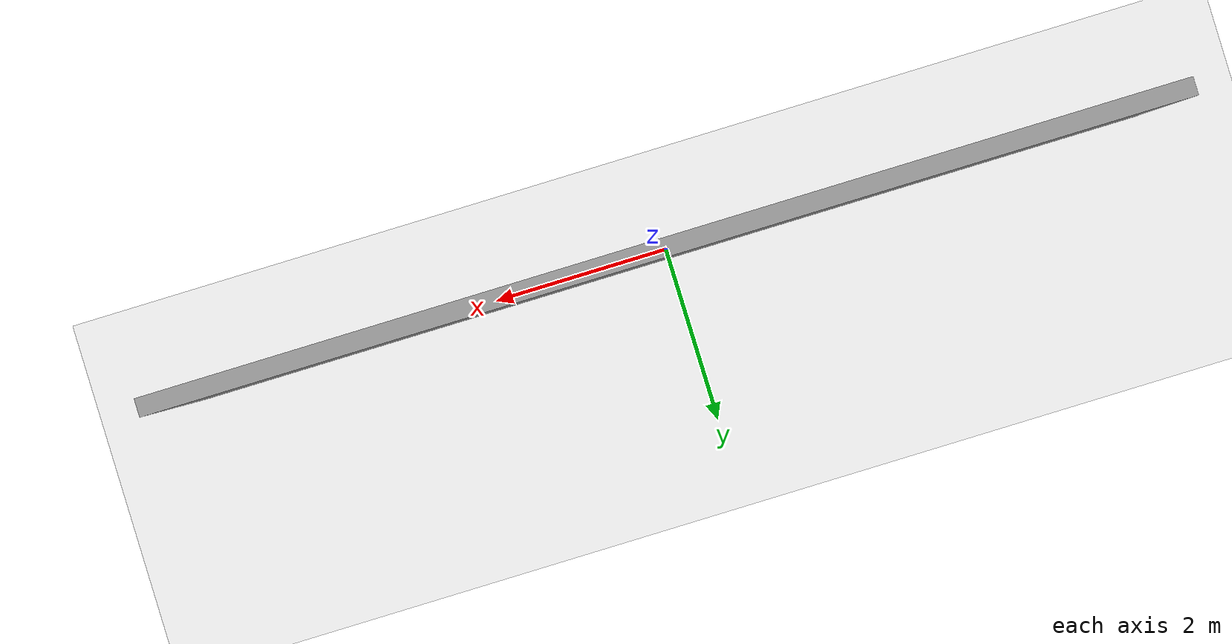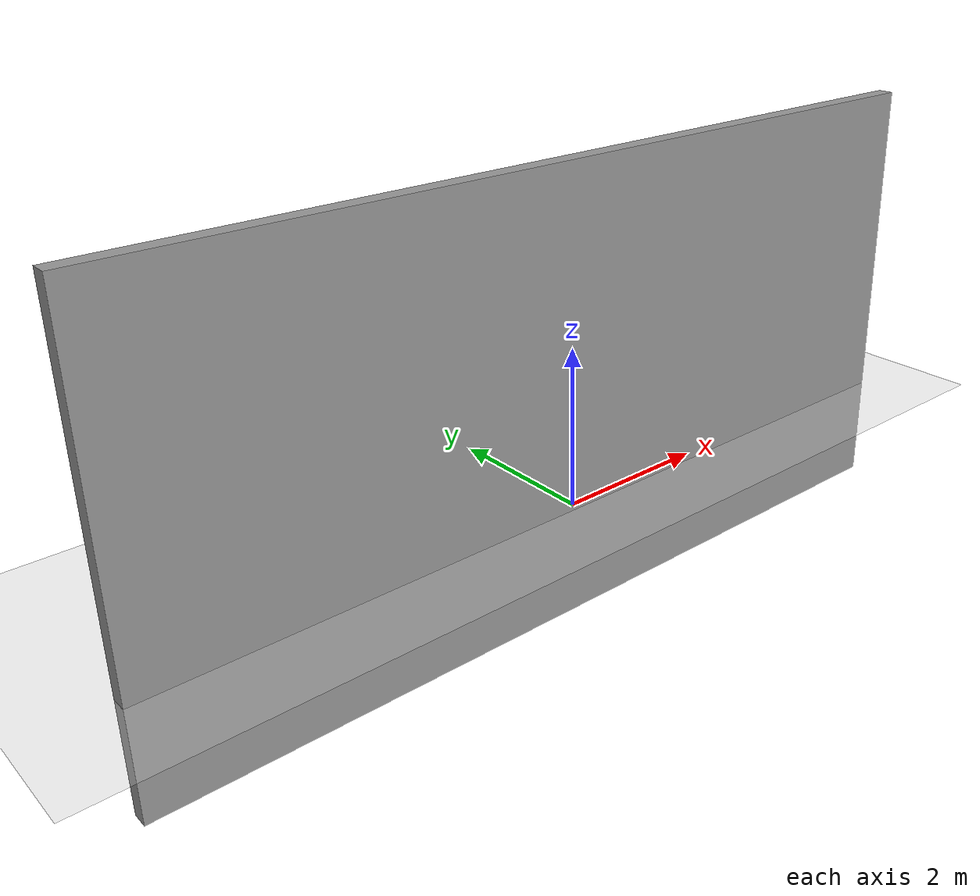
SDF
<sdf version="1.6">
 <world name="default">
  <model name="ground_plane">
   <static>1</static>
   <link name="link">
    <collision name="collision">
     <geometry><plane><normal>0 0 1</normal><size>1000 1000</size></plane></geometry>
     <surface><friction><ode><mu>100</mu><mu2>50</mu2></ode></friction></surface>
    </collision>
    <visual name="visual">
     <cast_shadows>0</cast_shadows>
     <geometry><plane><normal>0 0 1</normal><size>1000 1000</size></plane></geometry>
     <material>
      <script><uri>file://media/materials/scripts/gazebo.material</uri><name>Gazebo/Grey</name></script>
     </material>
    </visual>
   </link>
  </model>
  <gravity>0 0 -9.8</gravity>
  <magnetic_field>6e-06 2.3e-05 -4.2e-05</magnetic_field>
  <atmosphere type="adiabatic"/>
  <physics name="default_physics" default="0" type="ode">
   <real_time_factor>1</real_time_factor>
   <real_time_update_rate>0</real_time_update_rate>
  </physics>
  <scene><ambient>0.5 0.5 0.5 1</ambient><background>0.5 0.5 0.5 1</background><shadows>0</shadows></scene>
  <spherical_coordinates>
   <surface_model>EARTH_WGS84</surface_model>
   <latitude_deg>0</latitude_deg>
   <longitude_deg>0</longitude_deg>
   <elevation>0</elevation>
   <heading_deg>0</heading_deg>
  </spherical_coordinates>
  <include><uri>model://sun</uri></include>
  <model name="unit_cylinder">
   <link name="link">
    <inertial>
     <mass>1</mass>
     <inertia><ixx>0.145833</ixx><ixy>0</ixy><ixz>0</ixz><iyy>0.145833</iyy><iyz>0</iyz><izz>0.125</izz></inertia>
    </inertial>
    <kinematic>1</kinematic>
    <pose>0 -0 0.5 0 -0 0</pose>
    <visual name="visual">
     <geometry><cylinder><radius>0.1</radius><length>2</length></cylinder></geometry>
     <material>
      <script><name>Gazebo/Grey</name><uri>file://media/materials/scripts/gazebo.material</uri></script>
      <shader type="pixel"><normal_map>__default__</normal_map></shader>
      <ambient>0.3 0.3 0.3 1</ambient>
      <diffuse>1 0 0 1</diffuse>
      <specular>0.2 0.2 0.2 1</specular>
      <emissive>0 0 0 1</emissive>
     </material>
     <cast_shadows>0</cast_shadows>
    </visual>
    <collision name="collision">
     <geometry><cylinder><radius>0.1</radius><length>2</length></cylinder></geometry>
     <surface>
      <friction>
       <ode><mu>1</mu><mu2>1</mu2><fdir1>0 0 0</fdir1><slip1>0</slip1><slip2>0</slip2></ode>
       <torsional>
        <coefficient>1</coefficient>
        <patch_radius>0</patch_radius>
        <surface_radius>0</surface_radius>
        <use_patch_radius>1</use_patch_radius>
        <ode><slip>0</slip></ode>
       </torsional>
      </friction>
      <bounce><restitution_coefficient>0</restitution_coefficient><threshold>1e+06</threshold></bounce>
      <contact>
       <collide_without_contact>0</collide_without_contact>
       <collide_without_contact_bitmask>1</collide_without_contact_bitmask>
       <collide_bitmask>1</collide_bitmask>
       <ode>
        <soft_cfm>0</soft_cfm>
        <soft_erp>0.2</soft_erp>
        <kp>1e+13</kp>
        <kd>1</kd>
        <max_vel>0.01</max_vel>
        <min_depth>0</min_depth>
       </ode>
       <bullet>
        <split_impulse>1</split_impulse>
        <split_impulse_penetration_threshold>-0.01</split_impulse_penetration_threshold>
        <soft_cfm>0</soft_cfm>
        <soft_erp>0.2</soft_erp>
        <kp>1e+13</kp>
        <kd>1</kd>
       </bullet>
      </contact>
     </surface>
    </collision>
   </link>
   <static>0</static>
  </model>
  <model name="unit_cylinder_clone">
   <link name="link">
    <inertial>
     <mass>1</mass>
     <inertia><ixx>0.145833</ixx><ixy>0</ixy><ixz>0</ixz><iyy>0.145833</iyy><iyz>0</iyz><izz>0.125</izz></inertia>
    </inertial>
    <kinematic>1</kinematic>
    <pose>0 -0 0.5 0 -0 0</pose>
    <visual name="visual">
     <geometry><cylinder><radius>0.1</radius><length>2</length></cylinder></geometry>
     <material>
      <script><name>Gazebo/Grey</name><uri>file://media/materials/scripts/gazebo.material</uri></script>
      <shader type="pixel"><normal_map>__default__</normal_map></shader>
      <ambient>0.3 0.3 0.3 1</ambient>
      <diffuse>1 0 0 1</diffuse>
      <specular>0.2 0.2 0.2 1</specular>
      <emissive>0 0 0 1</emissive>
     </material>
     <cast_shadows>0</cast_shadows>
    </visual>
    <collision name="collision">
     <geometry><cylinder><radius>0.1</radius><length>2</length></cylinder></geometry>
     <surface>
      <friction>
       <ode><mu>1</mu><mu2>1</mu2><fdir1>0 0 0</fdir1><slip1>0</slip1><slip2>0</slip2></ode>
       <torsional>
        <coefficient>1</coefficient>
        <patch_radius>0</patch_radius>
        <surface_radius>0</surface_radius>
        <use_patch_radius>1</use_patch_radius>
        <ode><slip>0</slip></ode>
       </torsional>
      </friction>
      <bounce><restitution_coefficient>0</restitution_coefficient><threshold>1e+06</threshold></bounce>
      <contact>
       <collide_without_contact>0</collide_without_contact>
       <collide_without_contact_bitmask>1</collide_without_contact_bitmask>
       <collide_bitmask>1</collide_bitmask>
       <ode>
        <soft_cfm>0</soft_cfm>
        <soft_erp>0.2</soft_erp>
        <kp>1e+13</kp>
        <kd>1</kd>
        <max_vel>0.01</max_vel>
        <min_depth>0</min_depth>
       </ode>
       <bullet>
        <split_impulse>1</split_impulse>
        <split_impulse_penetration_threshold>-0.01</split_impulse_penetration_threshold>
        <soft_cfm>0</soft_cfm>
        <soft_erp>0.2</soft_erp>
        <kp>1e+13</kp>
        <kd>1</kd>
       </bullet>
      </contact>
     </surface>
    </collision>
   </link>
   <static>0</static>
  </model>
  <model name="unit_cylinder_clone_0">
   <link name="link">
    <inertial>
     <mass>1</mass>
     <inertia><ixx>0.145833</ixx><ixy>0</ixy><ixz>0</ixz><iyy>0.145833</iyy><iyz>0</iyz><izz>0.125</izz></inertia>
    </inertial>
    <kinematic>1</kinematic>
    <pose>0 -0 0.5 0 -0 0</pose>
    <visual name="visual">
     <geometry><cylinder><radius>0.1</radius><length>2</length></cylinder></geometry>
     <material>
      <script><name>Gazebo/Grey</name><uri>file://media/materials/scripts/gazebo.material</uri></script>
      <shader type="pixel"><normal_map>__default__</normal_map></shader>
      <ambient>0.3 0.3 0.3 1</ambient>
      <diffuse>1 0 0 1</diffuse>
      <specular>0.2 0.2 0.2 1</specular>
      <emissive>0 0 0 1</emissive>
     </material>
     <cast_shadows>0</cast_shadows>
    </visual>
    <collision name="collision">
     <geometry><cylinder><radius>0.1</radius><length>2</length></cylinder></geometry>
     <surface>
      <friction>
       <ode><mu>1</mu><mu2>1</mu2><fdir1>0 0 0</fdir1><slip1>0</slip1><slip2>0</slip2></ode>
       <torsional>
        <coefficient>1</coefficient>
        <patch_radius>0</patch_radius>
        <surface_radius>0</surface_radius>
        <use_patch_radius>1</use_patch_radius>
        <ode><slip>0</slip></ode>
       </torsional>
      </friction>
      <bounce><restitution_coefficient>0</restitution_coefficient><threshold>1e+06</threshold></bounce>
      <contact>
       <collide_without_contact>0</collide_without_contact>
       <collide_without_contact_bitmask>1</collide_without_contact_bitmask>
       <collide_bitmask>1</collide_bitmask>
       <ode>
        <soft_cfm>0</soft_cfm>
        <soft_erp>0.2</soft_erp>
        <kp>1e+13</kp>
        <kd>1</kd>
        <max_vel>0.01</max_vel>
        <min_depth>0</min_depth>
       </ode>
       <bullet>
        <split_impulse>1</split_impulse>
        <split_impulse_penetration_threshold>-0.01</split_impulse_penetration_threshold>
        <soft_cfm>0</soft_cfm>
        <soft_erp>0.2</soft_erp>
        <kp>1e+13</kp>
        <kd>1</kd>
       </bullet>
      </contact>
     </surface>
    </collision>
   </link>
   <static>0</static>
  </model>
  <model name="unit_cylinder_clone_1">
   <link name="link">
    <inertial>
     <mass>1</mass>
     <inertia><ixx>0.145833</ixx><ixy>0</ixy><ixz>0</ixz><iyy>0.145833</iyy><iyz>0</iyz><izz>0.125</izz></inertia>
    </inertial>
    <kinematic>1</kinematic>
    <pose>0 -0 0.5 0 -0 0</pose>
    <visual name="visual">
     <geometry><cylinder><radius>0.1</radius><length>2</length></cylinder></geometry>
     <material>
      <script><name>Gazebo/Grey</name><uri>file://media/materials/scripts/gazebo.material</uri></script>
      <shader type="pixel"><normal_map>__default__</normal_map></shader>
      <ambient>0.3 0.3 0.3 1</ambient>
      <diffuse>1 0 0 1</diffuse>
      <specular>0.2 0.2 0.2 1</specular>
      <emissive>0 0 0 1</emissive>
     </material>
     <cast_shadows>0</cast_shadows>
    </visual>
    <collision name="collision">
     <geometry><cylinder><radius>0.1</radius><length>2</length></cylinder></geometry>
     <surface>
      <friction>
       <ode><mu>1</mu><mu2>1</mu2><fdir1>0 0 0</fdir1><slip1>0</slip1><slip2>0</slip2></ode>
       <torsional>
        <coefficient>1</coefficient>
        <patch_radius>0</patch_radius>
        <surface_radius>0</surface_radius>
        <use_patch_radius>1</use_patch_radius>
        <ode><slip>0</slip></ode>
       </torsional>
      </friction>
      <bounce><restitution_coefficient>0</restitution_coefficient><threshold>1e+06</threshold></bounce>
      <contact>
       <collide_without_contact>0</collide_without_contact>
       <collide_without_contact_bitmask>1</collide_without_contact_bitmask>
       <collide_bitmask>1</collide_bitmask>
       <ode>
        <soft_cfm>0</soft_cfm>
        <soft_erp>0.2</soft_erp>
        <kp>1e+13</kp>
        <kd>1</kd>
        <max_vel>0.01</max_vel>
        <min_depth>0</min_depth>
       </ode>
       <bullet>
        <split_impulse>1</split_impulse>
        <split_impulse_penetration_threshold>-0.01</split_impulse_penetration_threshold>
        <soft_cfm>0</soft_cfm>
        <soft_erp>0.2</soft_erp>
        <kp>1e+13</kp>
        <kd>1</kd>
       </bullet>
      </contact>
     </surface>
    </collision>
   </link>
   <static>0</static>
  </model>
  <model name="unit_cylinder_clone_2">
   <link name="link">
    <inertial>
     <mass>1</mass>
     <inertia><ixx>0.145833</ixx><ixy>0</ixy><ixz>0</ixz><iyy>0.145833</iyy><iyz>0</iyz><izz>0.125</izz></inertia>
    </inertial>
    <kinematic>1</kinematic>
    <pose>0 -0 0.5 0 -0 0</pose>
    <visual name="visual">
     <geometry><cylinder><radius>0.1</radius><length>2</length></cylinder></geometry>
     <material>
      <script><name>Gazebo/Grey</name><uri>file://media/materials/scripts/gazebo.material</uri></script>
      <shader type="pixel"><normal_map>__default__</normal_map></shader>
      <ambient>0.3 0.3 0.3 1</ambient>
      <diffuse>1 0 0 1</diffuse>
      <specular>0.2 0.2 0.2 1</specular>
      <emissive>0 0 0 1</emissive>
     </material>
     <cast_shadows>0</cast_shadows>
    </visual>
    <collision name="collision">
     <geometry><cylinder><radius>0.1</radius><length>2</length></cylinder></geometry>
     <surface>
      <friction>
       <ode><mu>1</mu><mu2>1</mu2><fdir1>0 0 0</fdir1><slip1>0</slip1><slip2>0</slip2></ode>
       <torsional>
        <coefficient>1</coefficient>
        <patch_radius>0</patch_radius>
        <surface_radius>0</surface_radius>
        <use_patch_radius>1</use_patch_radius>
        <ode><slip>0</slip></ode>
       </torsional>
      </friction>
      <bounce><restitution_coefficient>0</restitution_coefficient><threshold>1e+06</threshold></bounce>
      <contact>
       <collide_without_contact>0</collide_without_contact>
       <collide_without_contact_bitmask>1</collide_without_contact_bitmask>
       <collide_bitmask>1</collide_bitmask>
       <ode>
        <soft_cfm>0</soft_cfm>
        <soft_erp>0.2</soft_erp>
        <kp>1e+13</kp>
        <kd>1</kd>
        <max_vel>0.01</max_vel>
        <min_depth>0</min_depth>
       </ode>
       <bullet>
        <split_impulse>1</split_impulse>
        <split_impulse_penetration_threshold>-0.01</split_impulse_penetration_threshold>
        <soft_cfm>0</soft_cfm>
        <soft_erp>0.2</soft_erp>
        <kp>1e+13</kp>
        <kd>1</kd>
       </bullet>
      </contact>
     </surface>
    </collision>
   </link>
   <static>0</static>
  </model>
  <model name="grey_wall">
   <static>1</static>
   <link name="link">
    <pose>0 0 1.4 0 -0 0</pose>
    <collision name="collision"><geometry><box><size>11.25 0.2 5.6</size></box></geometry></collision>
    <visual name="visual">
     <cast_shadows>0</cast_shadows>
     <geometry><box><size>11.25 0.2 5.6</size></box></geometry>
     <material>
      <script>
       <uri>model://grey_wall/materials/scripts</uri>
       <uri>model://grey_wall/materials/textures</uri>
       <name>vrc/grey_wall</name>
      </script>
     </material>
    </visual>
   </link>
  </model>
  <model name="grey_wall_0">
   <static>1</static>
   <link name="link">
    <pose>0 0 1.4 0 -0 0</pose>
    <collision name="collision"><geometry><box><size>11.25 0.2 5.6</size></box></geometry></collision>
    <visual name="visual">
     <cast_shadows>0</cast_shadows>
     <geometry><box><size>11.25 0.2 5.6</size></box></geometry>
     <material>
      <script>
       <uri>model://grey_wall/materials/scripts</uri>
       <uri>model://grey_wall/materials/textures</uri>
       <name>vrc/grey_wall</name>
      </script>
     </material>
    </visual>
   </link>
  </model>
 </world>
</sdf>
